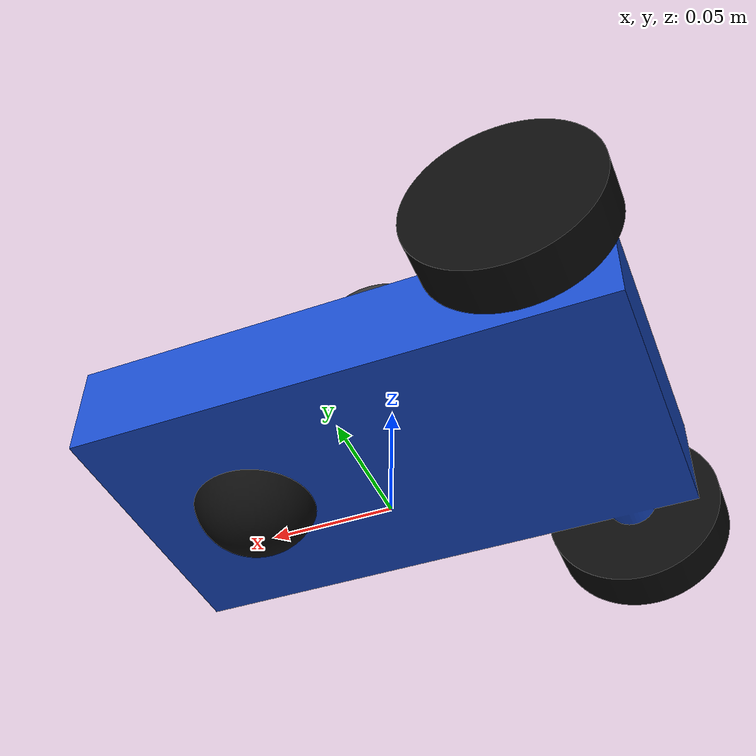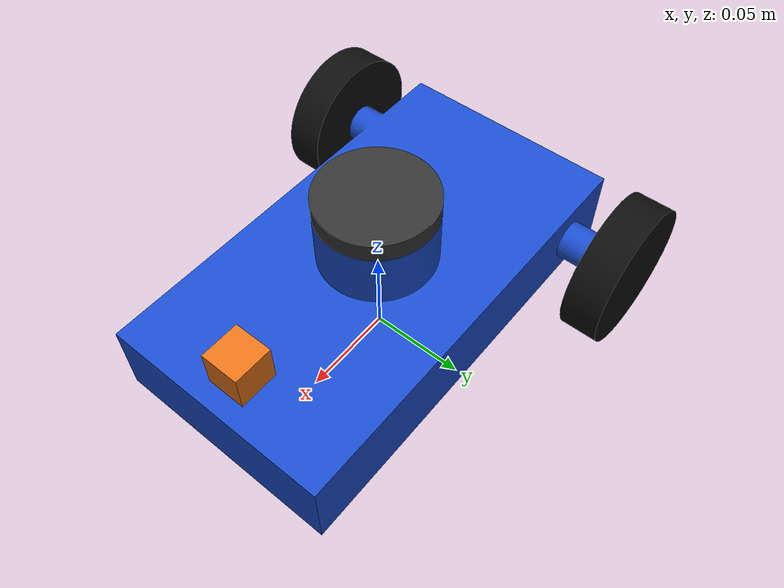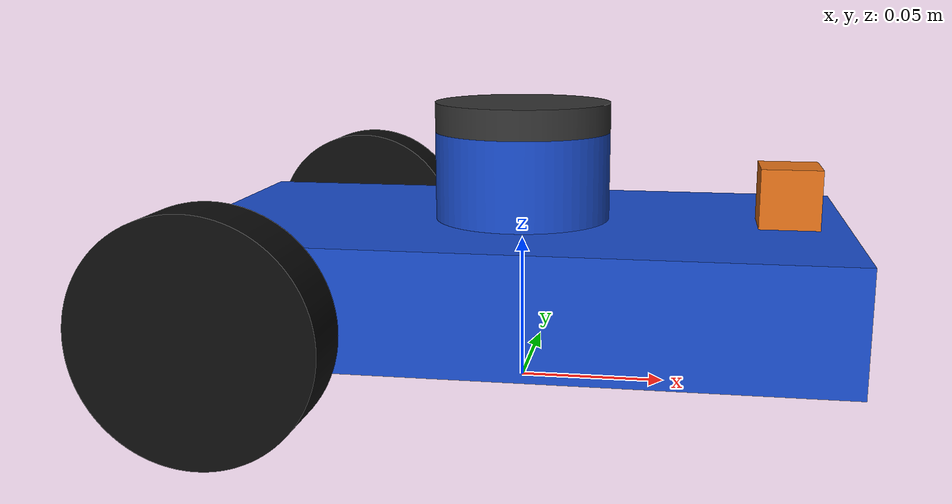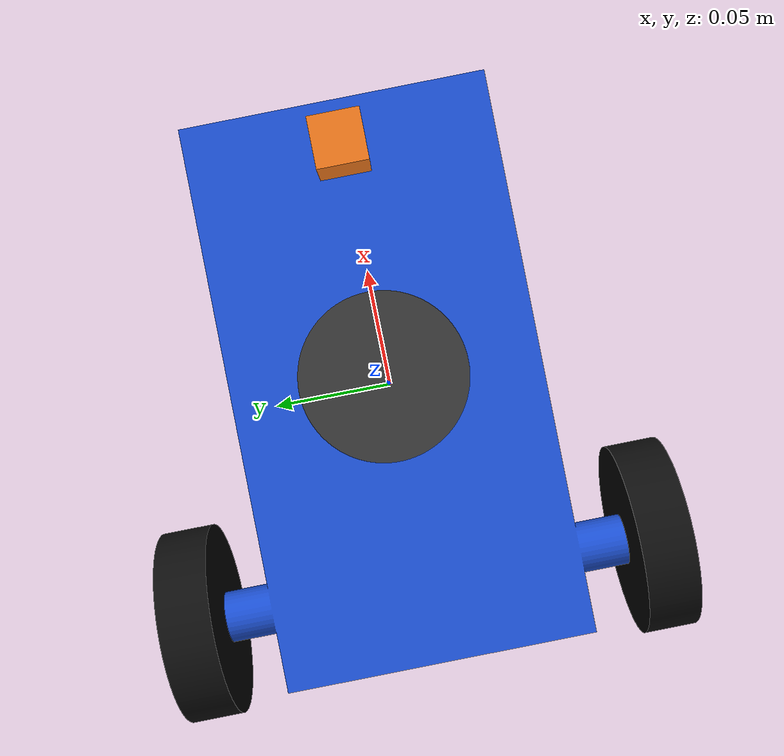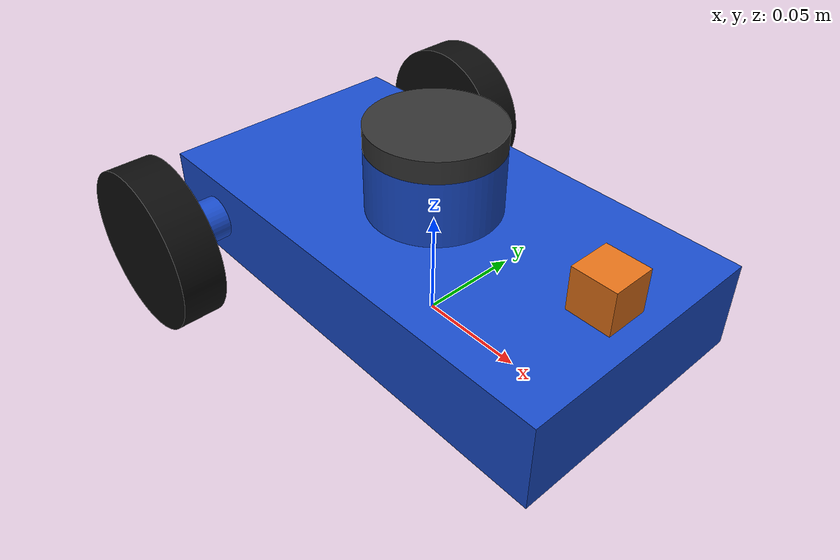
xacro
<?xml version="1.0" ?>
<robot name="Robot-Pogyo_Lorona-WS2" xmlns:xacro="http://www.ros.org/wiki/xacro">

<xacro:include filename="$(find Robot-Pogyo_Lorona-WS2_description)/urdf/materials.xacro" />
<xacro:include filename="$(find Robot-Pogyo_Lorona-WS2_description)/urdf/Robot-Pogyo_Lorona-WS2.ros2control" />
<xacro:include filename="$(find Robot-Pogyo_Lorona-WS2_description)/urdf/Robot-Pogyo_Lorona-WS2.gazebo" />
<link name="base_link">
  <inertial>
    <origin xyz="-0.0008716134146249028 0.0 0.04007398336506417" rpy="0 0 0"/>
    <mass value="9.054106572251074"/>
    <inertia ixx="0.012497" iyy="0.036125" izz="0.044795" ixy="0.0" iyz="0.0" ixz="-2e-05"/>
  </inertial>
  <visual>
    <origin xyz="0 0 0" rpy="0 0 0"/>
    <geometry>
      <mesh filename="file://$(find Robot-Pogyo_Lorona-WS2_description)/meshes/base_link.stl" scale="0.001 0.001 0.001"/>
    </geometry>
    <material name="body_blue">
      <color rgba="0.100 0.300 0.800 1.000"/>
    </material>
  </visual>
  <collision>
    <origin xyz="0 0 0.0525" rpy="0 0 0"/>
    <geometry>
      <box size="0.22 0.16 0.07"/>
    </geometry>
  </collision>
</link>

<link name="lidar_1">
  <inertial>
    <origin xyz="1.0052123437711858e-17 0.0 0.0050000000000000044" rpy="0 0 0"/>
    <mass value="0.2219535209761188"/>
    <inertia ixx="5.2e-05" iyy="5.2e-05" izz="0.0001" ixy="0.0" iyz="-0.0" ixz="0.0"/>
  </inertial>
  <visual>
    <origin xyz="-0.0 -0.0 -0.0875" rpy="0 0 0"/>
    <geometry>
      <mesh filename="file://$(find Robot-Pogyo_Lorona-WS2_description)/meshes/lidar_1.stl" scale="0.001 0.001 0.001"/>
    </geometry>
    <material name="lidar_grey">
      <color rgba="0.200 0.200 0.200 1.000"/>
    </material>
  </visual>
</link>

<link name="camera_1">
  <inertial>
    <origin xyz="-0.020000000000000004 0.0 0.010000000000000002" rpy="0 0 0"/>
    <mass value="0.0628"/>
    <inertia ixx="4e-06" iyy="4e-06" izz="4e-06" ixy="0.0" iyz="0.0" ixz="0.0"/>
  </inertial>
  <visual>
    <origin xyz="-0.11 -0.0 -0.0575" rpy="0 0 0"/>
    <geometry>
      <mesh filename="file://$(find Robot-Pogyo_Lorona-WS2_description)/meshes/camera_1.stl" scale="0.001 0.001 0.001"/>
    </geometry>
    <material name="camera_orange">
      <color rgba="0.900 0.450 0.100 1.000"/>
    </material>
  </visual>
</link>

<link name="caster_1">
  <inertial>
    <origin xyz="0.06000000000000001 -6.855542007598917e-18 -0.006391402495744708" rpy="0 0 0"/>
    <mass value="0.1627226693245904"/>
    <inertia ixx="2.2e-05" iyy="2.2e-05" izz="3.8e-05" ixy="0.0" iyz="-0.0" ixz="0.0"/>
  </inertial>
  <visual>
    <origin xyz="-0.0 -0.0 -0.0175" rpy="0 0 0"/>
    <geometry>
      <mesh filename="file://$(find Robot-Pogyo_Lorona-WS2_description)/meshes/caster_1.stl" scale="0.001 0.001 0.001"/>
    </geometry>
    <material name="wheel_black">
      <color rgba="0.050 0.050 0.050 1.000"/>
    </material>
  </visual>
</link>

<link name="caster_swivel">
  <inertial>
    <origin xyz="0 0 0" rpy="0 0 0"/>
    <mass value="0.010"/>
    <inertia ixx="1e-6" iyy="1e-6" izz="1e-6" ixy="0.0" iyz="0.0" ixz="0.0"/>
  </inertial>
</link>

<link name="caster_wheel">
  <inertial>
    <origin xyz="0 0 0" rpy="0 0 0"/>
    <mass value="0.050"/>
    <inertia ixx="1e-6" iyy="1e-6" izz="1e-6" ixy="0.0" iyz="0.0" ixz="0.0"/>
  </inertial>
  <collision>
    <origin xyz="0 0 0" rpy="0 0 0"/>
    <geometry>
      <sphere radius="0.0175"/>
    </geometry>
  </collision>
</link>

<link name="right_wheel_1">
  <inertial>
    <origin xyz="-5.967448757360216e-16 -0.010000000000000037 2.3592239273284576e-16" rpy="0 0 0"/>
    <mass value="0.6936047530503711"/>
    <inertia ixx="0.000267" iyy="0.000488" izz="0.000267" ixy="0.0" iyz="0.0" ixz="-0.0"/>
  </inertial>
  <visual>
    <origin xyz="0.08 0.08 -0.0375" rpy="0 0 0"/>
    <geometry>
      <mesh filename="file://$(find Robot-Pogyo_Lorona-WS2_description)/meshes/right_wheel_1.stl" scale="0.001 0.001 0.001"/>
    </geometry>
    <material name="wheel_black">
      <color rgba="0.050 0.050 0.050 1.000"/>
    </material>
  </visual>
  <collision>
    <origin xyz="0.0 -0.01 -0.001" rpy="1.5707963 0 0"/>
    <geometry>
      <cylinder radius="0.0375" length="0.02"/>
    </geometry>
  </collision>
</link>

<link name="left_wheel_1">
  <inertial>
    <origin xyz="-5.551115123125783e-17 0.010000000000000064 -2.7755575615628914e-17" rpy="0 0 0"/>
    <mass value="0.6936047530503711"/>
    <inertia ixx="0.000267" iyy="0.000488" izz="0.000267" ixy="-0.0" iyz="0.0" ixz="-0.0"/>
  </inertial>
  <visual>
    <origin xyz="0.08 -0.08 -0.0375" rpy="0 0 0"/>
    <geometry>
      <mesh filename="file://$(find Robot-Pogyo_Lorona-WS2_description)/meshes/left_wheel_1.stl" scale="0.001 0.001 0.001"/>
    </geometry>
    <material name="wheel_black">
      <color rgba="0.050 0.050 0.050 1.000"/>
    </material>
  </visual>
  <collision>
    <origin xyz="0.0 0.01 -0.001" rpy="1.5707963 0 0"/>
    <geometry>
      <cylinder radius="0.0375" length="0.02"/>
    </geometry>
  </collision>
</link>

<joint name="Lidar_Joint" type="fixed">
  <origin xyz="0.0 0.0 0.0875" rpy="0 0 0"/>
  <parent link="base_link"/>
  <child link="lidar_1"/>
</joint>

<joint name="Camera_Joint" type="fixed">
  <origin xyz="0.11 0.0 0.0575" rpy="0 0 0"/>
  <parent link="base_link"/>
  <child link="camera_1"/>
</joint>

<joint name="Caster_Joint" type="fixed">
  <origin xyz="0.0 0.0 0.0175" rpy="0 0 0"/>
  <parent link="base_link"/>
  <child link="caster_1"/>
</joint>

<joint name="Caster_Swivel_Joint" type="continuous">
  <origin xyz="0.06 0 0" rpy="0 0 0"/>
  <parent link="caster_1"/>
  <child link="caster_swivel"/>
  <axis xyz="0 0 1"/>
</joint>

<joint name="Caster_Wheel_Joint" type="continuous">
  <origin xyz="0 0 0" rpy="0 0 0"/>
  <parent link="caster_swivel"/>
  <child link="caster_wheel"/>
  <axis xyz="0 1 0"/>
</joint>

<joint name="Right_Joint" type="continuous">
  <origin xyz="-0.08 -0.08 0.0375" rpy="0 0 0"/>
  <parent link="base_link"/>
  <child link="right_wheel_1"/>
  <axis xyz="0.0 1.0 0.0"/>
</joint>

<joint name="Left_Joint" type="continuous">
  <origin xyz="-0.08 0.08 0.0375" rpy="0 0 0"/>
  <parent link="base_link"/>
  <child link="left_wheel_1"/>
  <axis xyz="0.0 1.0 0.0"/>
</joint>

</robot>

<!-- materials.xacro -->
<robot name="Robot-Pogyo_Lorona-WS2" xmlns:xacro="http://www.ros.org/wiki/xacro" >

<material name="body_blue">
  <color rgba="0.100 0.300 0.800 1.000"/>
</material>

<material name="wheel_black">
  <color rgba="0.050 0.050 0.050 1.000"/>
</material>

<material name="lidar_grey">
  <color rgba="0.200 0.200 0.200 1.000"/>
</material>

<material name="camera_orange">
  <color rgba="0.900 0.450 0.100 1.000"/>
</material>

</robot>
